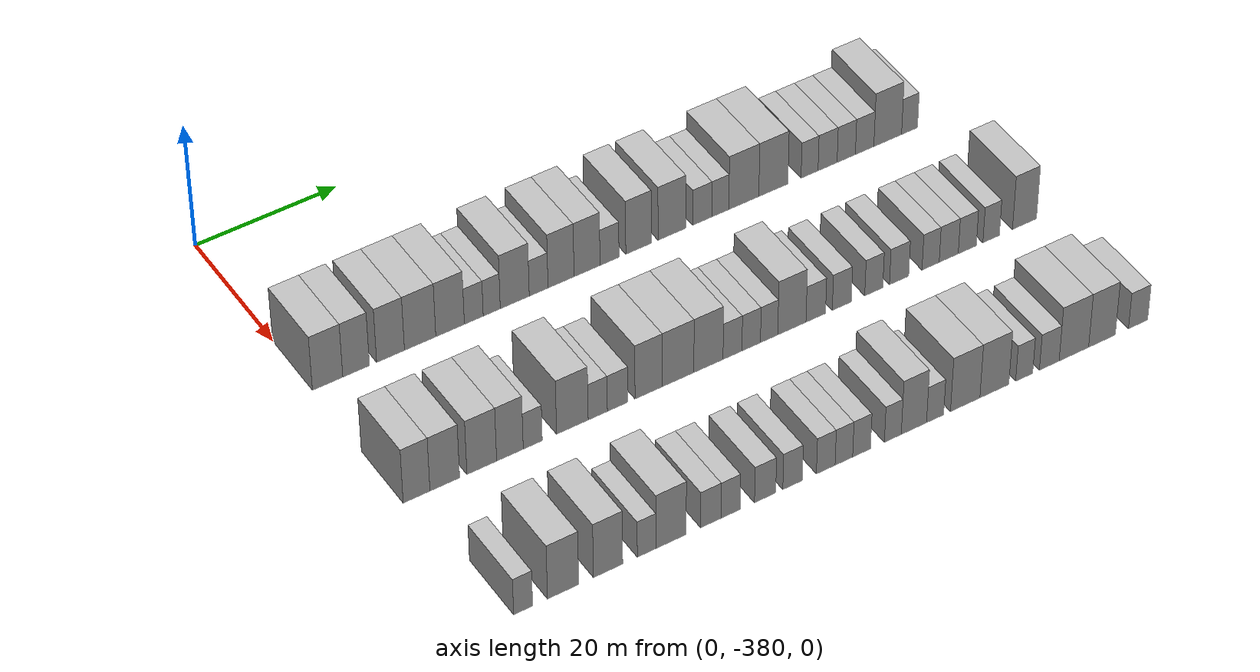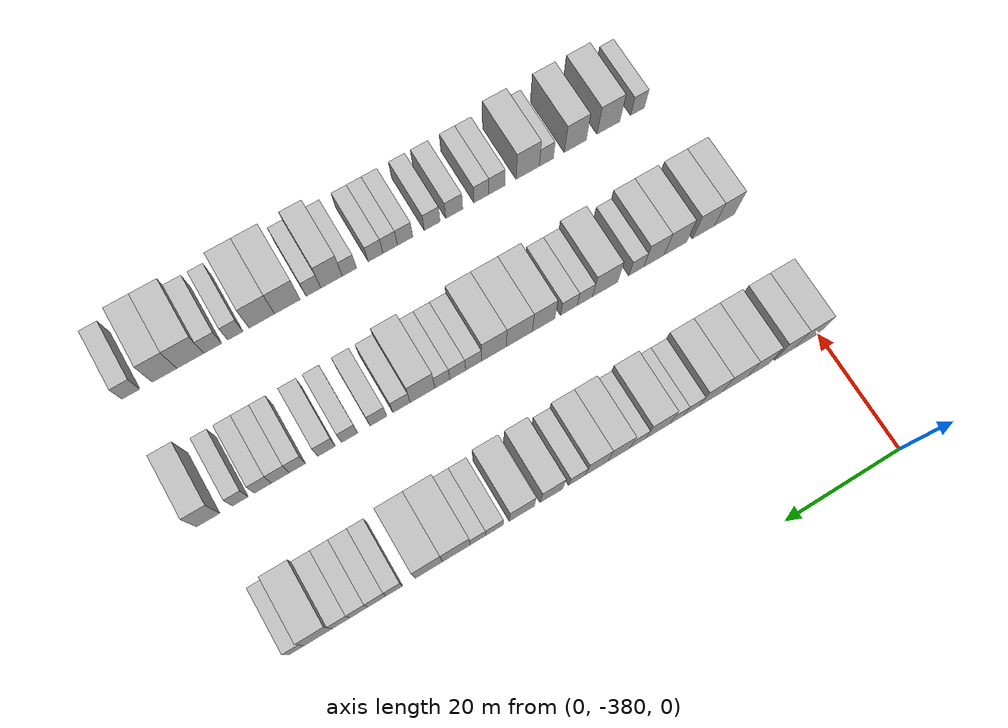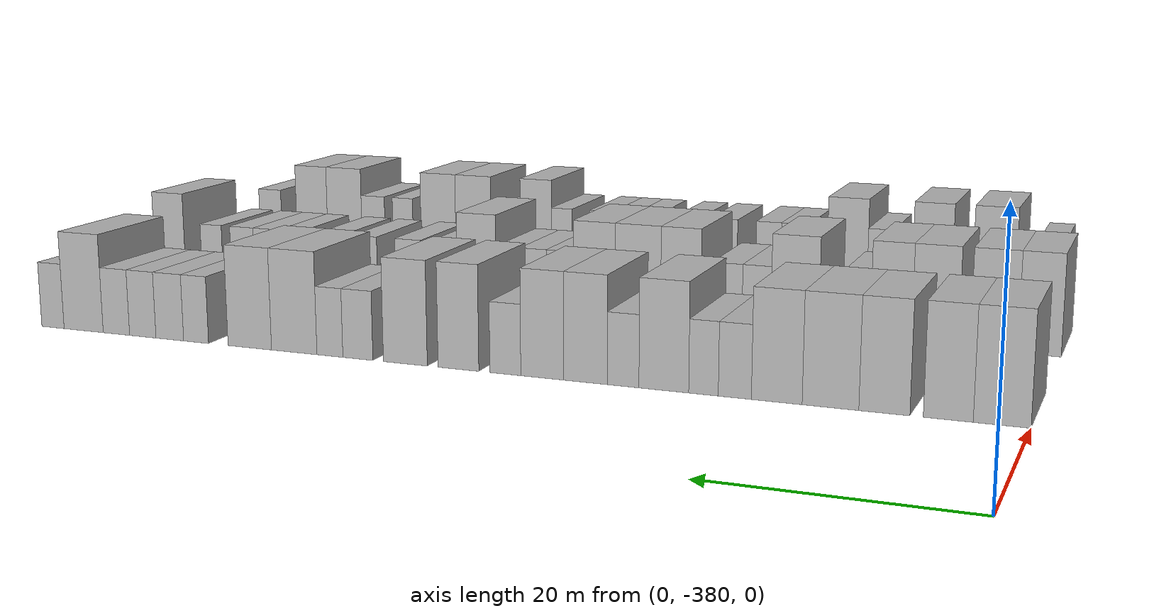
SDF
<sdf version="1.6">
 <world name="default">
  <model name="building_1">
   <static>1</static>
   <pose>25.0000 -377.9014 0 0.000000 0.000000 0.000000</pose>
   <link name="link">
    <pose>0 0 4.50 0 0 0</pose>
    <collision name="collision"><geometry><box><size>10.0000 4.1972 9.0000</size></box></geometry></collision>
    <visual name="visual">
     <cast_shadows>0</cast_shadows>
     <geometry><box><size>10.0000 4.1972 9.0000</size></box></geometry>
     <material>
      <script>
       <uri>model://HANNAS_wall/materials/scripts</uri>
       <uri>model://HANNAS_wall/materials/textures</uri>
       <name>vrc/HANNAS_wall</name>
      </script>
     </material>
    </visual>
   </link>
  </model>
  <model name="building_2">
   <static>1</static>
   <pose>25.0000 -373.9525 0 0.000000 0.000000 0.000000</pose>
   <link name="link">
    <pose>0 0 4.50 0 0 0</pose>
    <collision name="collision"><geometry><box><size>10.0000 3.7007 9.0000</size></box></geometry></collision>
    <visual name="visual">
     <cast_shadows>0</cast_shadows>
     <geometry><box><size>10.0000 3.7007 9.0000</size></box></geometry>
     <material>
      <script>
       <uri>model://HANNAS_wall/materials/scripts</uri>
       <uri>model://HANNAS_wall/materials/textures</uri>
       <name>vrc/HANNAS_wall</name>
      </script>
     </material>
    </visual>
   </link>
  </model>
  <model name="building_3">
   <static>1</static>
   <pose>25.0000 -369.1578 0 0.000000 0.000000 0.000000</pose>
   <link name="link">
    <pose>0 0 4.50 0 0 0</pose>
    <collision name="collision"><geometry><box><size>10.0000 3.8887 9.0000</size></box></geometry></collision>
    <visual name="visual">
     <cast_shadows>0</cast_shadows>
     <geometry><box><size>10.0000 3.8887 9.0000</size></box></geometry>
     <material>
      <script>
       <uri>model://HANNAS_wall/materials/scripts</uri>
       <uri>model://HANNAS_wall/materials/textures</uri>
       <name>vrc/HANNAS_wall</name>
      </script>
     </material>
    </visual>
   </link>
  </model>
  <model name="building_4">
   <static>1</static>
   <pose>25.0000 -365.0094 0 0.000000 0.000000 0.000000</pose>
   <link name="link">
    <pose>0 0 4.50 0 0 0</pose>
    <collision name="collision"><geometry><box><size>10.0000 4.4080 9.0000</size></box></geometry></collision>
    <visual name="visual">
     <cast_shadows>0</cast_shadows>
     <geometry><box><size>10.0000 4.4080 9.0000</size></box></geometry>
     <material>
      <script>
       <uri>model://HANNAS_wall/materials/scripts</uri>
       <uri>model://HANNAS_wall/materials/textures</uri>
       <name>vrc/HANNAS_wall</name>
      </script>
     </material>
    </visual>
   </link>
  </model>
  <model name="building_5">
   <static>1</static>
   <pose>25.0000 -360.7854 0 0.000000 0.000000 0.000000</pose>
   <link name="link">
    <pose>0 0 4.50 0 0 0</pose>
    <collision name="collision"><geometry><box><size>10.0000 4.0401 9.0000</size></box></geometry></collision>
    <visual name="visual">
     <cast_shadows>0</cast_shadows>
     <geometry><box><size>10.0000 4.0401 9.0000</size></box></geometry>
     <material>
      <script>
       <uri>model://HANNAS_wall/materials/scripts</uri>
       <uri>model://HANNAS_wall/materials/textures</uri>
       <name>vrc/HANNAS_wall</name>
      </script>
     </material>
    </visual>
   </link>
  </model>
  <model name="building_6">
   <static>1</static>
   <pose>25.0000 -357.4255 0 0.000000 0.000000 0.000000</pose>
   <link name="link">
    <pose>0 0 3.00 0 0 0</pose>
    <collision name="collision"><geometry><box><size>10.0000 2.6798 6.0000</size></box></geometry></collision>
    <visual name="visual">
     <cast_shadows>0</cast_shadows>
     <geometry><box><size>10.0000 2.6798 6.0000</size></box></geometry>
     <material>
      <script>
       <uri>model://HANNAS_wall/materials/scripts</uri>
       <uri>model://HANNAS_wall/materials/textures</uri>
       <name>vrc/HANNAS_wall</name>
      </script>
     </material>
    </visual>
   </link>
  </model>
  <model name="building_7">
   <static>1</static>
   <pose>25.0000 -354.8704 0 0.000000 0.000000 0.000000</pose>
   <link name="link">
    <pose>0 0 3.00 0 0 0</pose>
    <collision name="collision"><geometry><box><size>10.0000 2.4304 6.0000</size></box></geometry></collision>
    <visual name="visual">
     <cast_shadows>0</cast_shadows>
     <geometry><box><size>10.0000 2.4304 6.0000</size></box></geometry>
     <material>
      <script>
       <uri>model://HANNAS_wall/materials/scripts</uri>
       <uri>model://HANNAS_wall/materials/textures</uri>
       <name>vrc/HANNAS_wall</name>
      </script>
     </material>
    </visual>
   </link>
  </model>
  <model name="building_8">
   <static>1</static>
   <pose>25.0000 -351.5773 0 0.000000 0.000000 0.000000</pose>
   <link name="link">
    <pose>0 0 4.50 0 0 0</pose>
    <collision name="collision"><geometry><box><size>10.0000 4.1559 9.0000</size></box></geometry></collision>
    <visual name="visual">
     <cast_shadows>0</cast_shadows>
     <geometry><box><size>10.0000 4.1559 9.0000</size></box></geometry>
     <material>
      <script>
       <uri>model://HANNAS_wall/materials/scripts</uri>
       <uri>model://HANNAS_wall/materials/textures</uri>
       <name>vrc/HANNAS_wall</name>
      </script>
     </material>
    </visual>
   </link>
  </model>
  <model name="building_9">
   <static>1</static>
   <pose>25.0000 -348.1490 0 0.000000 0.000000 0.000000</pose>
   <link name="link">
    <pose>0 0 3.00 0 0 0</pose>
    <collision name="collision"><geometry><box><size>10.0000 2.7007 6.0000</size></box></geometry></collision>
    <visual name="visual">
     <cast_shadows>0</cast_shadows>
     <geometry><box><size>10.0000 2.7007 6.0000</size></box></geometry>
     <material>
      <script>
       <uri>model://HANNAS_wall/materials/scripts</uri>
       <uri>model://HANNAS_wall/materials/textures</uri>
       <name>vrc/HANNAS_wall</name>
      </script>
     </material>
    </visual>
   </link>
  </model>
  <model name="building_10">
   <static>1</static>
   <pose>25.0000 -344.9133 0 0.000000 0.000000 0.000000</pose>
   <link name="link">
    <pose>0 0 4.50 0 0 0</pose>
    <collision name="collision"><geometry><box><size>10.0000 3.7708 9.0000</size></box></geometry></collision>
    <visual name="visual">
     <cast_shadows>0</cast_shadows>
     <geometry><box><size>10.0000 3.7708 9.0000</size></box></geometry>
     <material>
      <script>
       <uri>model://HANNAS_wall/materials/scripts</uri>
       <uri>model://HANNAS_wall/materials/textures</uri>
       <name>vrc/HANNAS_wall</name>
      </script>
     </material>
    </visual>
   </link>
  </model>
  <model name="building_11">
   <static>1</static>
   <pose>25.0000 -341.1425 0 0.000000 0.000000 0.000000</pose>
   <link name="link">
    <pose>0 0 4.50 0 0 0</pose>
    <collision name="collision"><geometry><box><size>10.0000 3.7708 9.0000</size></box></geometry></collision>
    <visual name="visual">
     <cast_shadows>0</cast_shadows>
     <geometry><box><size>10.0000 3.7708 9.0000</size></box></geometry>
     <material>
      <script>
       <uri>model://HANNAS_wall/materials/scripts</uri>
       <uri>model://HANNAS_wall/materials/textures</uri>
       <name>vrc/HANNAS_wall</name>
      </script>
     </material>
    </visual>
   </link>
  </model>
  <model name="building_12">
   <static>1</static>
   <pose>25.0000 -337.8733 0 0.000000 0.000000 0.000000</pose>
   <link name="link">
    <pose>0 0 3.00 0 0 0</pose>
    <collision name="collision"><geometry><box><size>10.0000 2.7677 6.0000</size></box></geometry></collision>
    <visual name="visual">
     <cast_shadows>0</cast_shadows>
     <geometry><box><size>10.0000 2.7677 6.0000</size></box></geometry>
     <material>
      <script>
       <uri>model://HANNAS_wall/materials/scripts</uri>
       <uri>model://HANNAS_wall/materials/textures</uri>
       <name>vrc/HANNAS_wall</name>
      </script>
     </material>
    </visual>
   </link>
  </model>
  <model name="building_13">
   <static>1</static>
   <pose>25.0000 -333.6231 0 0.000000 0.000000 0.000000</pose>
   <link name="link">
    <pose>0 0 4.50 0 0 0</pose>
    <collision name="collision"><geometry><box><size>10.0000 3.7328 9.0000</size></box></geometry></collision>
    <visual name="visual">
     <cast_shadows>0</cast_shadows>
     <geometry><box><size>10.0000 3.7328 9.0000</size></box></geometry>
     <material>
      <script>
       <uri>model://HANNAS_wall/materials/scripts</uri>
       <uri>model://HANNAS_wall/materials/textures</uri>
       <name>vrc/HANNAS_wall</name>
      </script>
     </material>
    </visual>
   </link>
  </model>
  <model name="building_14">
   <static>1</static>
   <pose>25.0000 -328.6985 0 0.000000 0.000000 0.000000</pose>
   <link name="link">
    <pose>0 0 4.50 0 0 0</pose>
    <collision name="collision"><geometry><box><size>10.0000 4.1164 9.0000</size></box></geometry></collision>
    <visual name="visual">
     <cast_shadows>0</cast_shadows>
     <geometry><box><size>10.0000 4.1164 9.0000</size></box></geometry>
     <material>
      <script>
       <uri>model://HANNAS_wall/materials/scripts</uri>
       <uri>model://HANNAS_wall/materials/textures</uri>
       <name>vrc/HANNAS_wall</name>
      </script>
     </material>
    </visual>
   </link>
  </model>
  <model name="building_15">
   <static>1</static>
   <pose>25.0000 -324.2007 0 0.000000 0.000000 0.000000</pose>
   <link name="link">
    <pose>0 0 3.00 0 0 0</pose>
    <collision name="collision"><geometry><box><size>10.0000 2.8793 6.0000</size></box></geometry></collision>
    <visual name="visual">
     <cast_shadows>0</cast_shadows>
     <geometry><box><size>10.0000 2.8793 6.0000</size></box></geometry>
     <material>
      <script>
       <uri>model://HANNAS_wall/materials/scripts</uri>
       <uri>model://HANNAS_wall/materials/textures</uri>
       <name>vrc/HANNAS_wall</name>
      </script>
     </material>
    </visual>
   </link>
  </model>
  <model name="building_16">
   <static>1</static>
   <pose>25.0000 -321.5026 0 0.000000 0.000000 0.000000</pose>
   <link name="link">
    <pose>0 0 3.00 0 0 0</pose>
    <collision name="collision"><geometry><box><size>10.0000 2.5169 6.0000</size></box></geometry></collision>
    <visual name="visual">
     <cast_shadows>0</cast_shadows>
     <geometry><box><size>10.0000 2.5169 6.0000</size></box></geometry>
     <material>
      <script>
       <uri>model://HANNAS_wall/materials/scripts</uri>
       <uri>model://HANNAS_wall/materials/textures</uri>
       <name>vrc/HANNAS_wall</name>
      </script>
     </material>
    </visual>
   </link>
  </model>
  <model name="building_17">
   <static>1</static>
   <pose>25.0000 -317.9972 0 0.000000 0.000000 0.000000</pose>
   <link name="link">
    <pose>0 0 4.50 0 0 0</pose>
    <collision name="collision"><geometry><box><size>10.0000 4.4939 9.0000</size></box></geometry></collision>
    <visual name="visual">
     <cast_shadows>0</cast_shadows>
     <geometry><box><size>10.0000 4.4939 9.0000</size></box></geometry>
     <material>
      <script>
       <uri>model://HANNAS_wall/materials/scripts</uri>
       <uri>model://HANNAS_wall/materials/textures</uri>
       <name>vrc/HANNAS_wall</name>
      </script>
     </material>
    </visual>
   </link>
  </model>
  <model name="building_18">
   <static>1</static>
   <pose>25.0000 -313.5573 0 0.000000 0.000000 0.000000</pose>
   <link name="link">
    <pose>0 0 4.50 0 0 0</pose>
    <collision name="collision"><geometry><box><size>10.0000 4.3858 9.0000</size></box></geometry></collision>
    <visual name="visual">
     <cast_shadows>0</cast_shadows>
     <geometry><box><size>10.0000 4.3858 9.0000</size></box></geometry>
     <material>
      <script>
       <uri>model://HANNAS_wall/materials/scripts</uri>
       <uri>model://HANNAS_wall/materials/textures</uri>
       <name>vrc/HANNAS_wall</name>
      </script>
     </material>
    </visual>
   </link>
  </model>
  <model name="building_19">
   <static>1</static>
   <pose>25.0000 -308.0744 0 0.000000 0.000000 0.000000</pose>
   <link name="link">
    <pose>0 0 3.00 0 0 0</pose>
    <collision name="collision"><geometry><box><size>10.0000 2.5801 6.0000</size></box></geometry></collision>
    <visual name="visual">
     <cast_shadows>0</cast_shadows>
     <geometry><box><size>10.0000 2.5801 6.0000</size></box></geometry>
     <material>
      <script>
       <uri>model://HANNAS_wall/materials/scripts</uri>
       <uri>model://HANNAS_wall/materials/textures</uri>
       <name>vrc/HANNAS_wall</name>
      </script>
     </material>
    </visual>
   </link>
  </model>
  <model name="building_20">
   <static>1</static>
   <pose>25.0000 -305.3306 0 0.000000 0.000000 0.000000</pose>
   <link name="link">
    <pose>0 0 3.00 0 0 0</pose>
    <collision name="collision"><geometry><box><size>10.0000 2.9074 6.0000</size></box></geometry></collision>
    <visual name="visual">
     <cast_shadows>0</cast_shadows>
     <geometry><box><size>10.0000 2.9074 6.0000</size></box></geometry>
     <material>
      <script>
       <uri>model://HANNAS_wall/materials/scripts</uri>
       <uri>model://HANNAS_wall/materials/textures</uri>
       <name>vrc/HANNAS_wall</name>
      </script>
     </material>
    </visual>
   </link>
  </model>
  <model name="building_21">
   <static>1</static>
   <pose>25.0000 -302.4756 0 0.000000 0.000000 0.000000</pose>
   <link name="link">
    <pose>0 0 3.00 0 0 0</pose>
    <collision name="collision"><geometry><box><size>10.0000 2.8027 6.0000</size></box></geometry></collision>
    <visual name="visual">
     <cast_shadows>0</cast_shadows>
     <geometry><box><size>10.0000 2.8027 6.0000</size></box></geometry>
     <material>
      <script>
       <uri>model://HANNAS_wall/materials/scripts</uri>
       <uri>model://HANNAS_wall/materials/textures</uri>
       <name>vrc/HANNAS_wall</name>
      </script>
     </material>
    </visual>
   </link>
  </model>
  <model name="building_22">
   <static>1</static>
   <pose>25.0000 -299.6530 0 0.000000 0.000000 0.000000</pose>
   <link name="link">
    <pose>0 0 3.00 0 0 0</pose>
    <collision name="collision"><geometry><box><size>10.0000 2.8426 6.0000</size></box></geometry></collision>
    <visual name="visual">
     <cast_shadows>0</cast_shadows>
     <geometry><box><size>10.0000 2.8426 6.0000</size></box></geometry>
     <material>
      <script>
       <uri>model://HANNAS_wall/materials/scripts</uri>
       <uri>model://HANNAS_wall/materials/textures</uri>
       <name>vrc/HANNAS_wall</name>
      </script>
     </material>
    </visual>
   </link>
  </model>
  <model name="building_23">
   <static>1</static>
   <pose>25.0000 -296.0908 0 0.000000 0.000000 0.000000</pose>
   <link name="link">
    <pose>0 0 4.50 0 0 0</pose>
    <collision name="collision"><geometry><box><size>10.0000 4.2818 9.0000</size></box></geometry></collision>
    <visual name="visual">
     <cast_shadows>0</cast_shadows>
     <geometry><box><size>10.0000 4.2818 9.0000</size></box></geometry>
     <material>
      <script>
       <uri>model://HANNAS_wall/materials/scripts</uri>
       <uri>model://HANNAS_wall/materials/textures</uri>
       <name>vrc/HANNAS_wall</name>
      </script>
     </material>
    </visual>
   </link>
  </model>
  <model name="building_24">
   <static>1</static>
   <pose>25.0000 -292.7129 0 0.000000 0.000000 0.000000</pose>
   <link name="link">
    <pose>0 0 3.00 0 0 0</pose>
    <collision name="collision"><geometry><box><size>10.0000 2.4739 6.0000</size></box></geometry></collision>
    <visual name="visual">
     <cast_shadows>0</cast_shadows>
     <geometry><box><size>10.0000 2.4739 6.0000</size></box></geometry>
     <material>
      <script>
       <uri>model://HANNAS_wall/materials/scripts</uri>
       <uri>model://HANNAS_wall/materials/textures</uri>
       <name>vrc/HANNAS_wall</name>
      </script>
     </material>
    </visual>
   </link>
  </model>
  <model name="building_191">
   <static>1</static>
   <pose>47.0000 -378.1825 0 0.000000 0.000000 0.000000</pose>
   <link name="link">
    <pose>0 0 4.50 0 0 0</pose>
    <collision name="collision"><geometry><box><size>10.0000 3.6349 9.0000</size></box></geometry></collision>
    <visual name="visual">
     <cast_shadows>0</cast_shadows>
     <geometry><box><size>10.0000 3.6349 9.0000</size></box></geometry>
     <material>
      <script>
       <uri>model://HANNAS_wall/materials/scripts</uri>
       <uri>model://HANNAS_wall/materials/textures</uri>
       <name>vrc/HANNAS_wall</name>
      </script>
     </material>
    </visual>
   </link>
  </model>
  <model name="building_192">
   <static>1</static>
   <pose>47.0000 -374.3386 0 0.000000 0.000000 0.000000</pose>
   <link name="link">
    <pose>0 0 4.50 0 0 0</pose>
    <collision name="collision"><geometry><box><size>10.0000 4.0531 9.0000</size></box></geometry></collision>
    <visual name="visual">
     <cast_shadows>0</cast_shadows>
     <geometry><box><size>10.0000 4.0531 9.0000</size></box></geometry>
     <material>
      <script>
       <uri>model://HANNAS_wall/materials/scripts</uri>
       <uri>model://HANNAS_wall/materials/textures</uri>
       <name>vrc/HANNAS_wall</name>
      </script>
     </material>
    </visual>
   </link>
  </model>
  <model name="building_193">
   <static>1</static>
   <pose>47.0000 -369.2678 0 0.000000 0.000000 0.000000</pose>
   <link name="link">
    <pose>0 0 4.50 0 0 0</pose>
    <collision name="collision"><geometry><box><size>10.0000 4.0885 9.0000</size></box></geometry></collision>
    <visual name="visual">
     <cast_shadows>0</cast_shadows>
     <geometry><box><size>10.0000 4.0885 9.0000</size></box></geometry>
     <material>
      <script>
       <uri>model://HANNAS_wall/materials/scripts</uri>
       <uri>model://HANNAS_wall/materials/textures</uri>
       <name>vrc/HANNAS_wall</name>
      </script>
     </material>
    </visual>
   </link>
  </model>
  <model name="building_194">
   <static>1</static>
   <pose>47.0000 -365.3799 0 0.000000 0.000000 0.000000</pose>
   <link name="link">
    <pose>0 0 4.50 0 0 0</pose>
    <collision name="collision"><geometry><box><size>10.0000 3.6872 9.0000</size></box></geometry></collision>
    <visual name="visual">
     <cast_shadows>0</cast_shadows>
     <geometry><box><size>10.0000 3.6872 9.0000</size></box></geometry>
     <material>
      <script>
       <uri>model://HANNAS_wall/materials/scripts</uri>
       <uri>model://HANNAS_wall/materials/textures</uri>
       <name>vrc/HANNAS_wall</name>
      </script>
     </material>
    </visual>
   </link>
  </model>
  <model name="building_195">
   <static>1</static>
   <pose>47.0000 -362.2163 0 0.000000 0.000000 0.000000</pose>
   <link name="link">
    <pose>0 0 3.00 0 0 0</pose>
    <collision name="collision"><geometry><box><size>10.0000 2.6401 6.0000</size></box></geometry></collision>
    <visual name="visual">
     <cast_shadows>0</cast_shadows>
     <geometry><box><size>10.0000 2.6401 6.0000</size></box></geometry>
     <material>
      <script>
       <uri>model://HANNAS_wall/materials/scripts</uri>
       <uri>model://HANNAS_wall/materials/textures</uri>
       <name>vrc/HANNAS_wall</name>
      </script>
     </material>
    </visual>
   </link>
  </model>
  <model name="building_196">
   <static>1</static>
   <pose>47.0000 -356.6813 0 0.000000 0.000000 0.000000</pose>
   <link name="link">
    <pose>0 0 4.50 0 0 0</pose>
    <collision name="collision"><geometry><box><size>10.0000 4.4299 9.0000</size></box></geometry></collision>
    <visual name="visual">
     <cast_shadows>0</cast_shadows>
     <geometry><box><size>10.0000 4.4299 9.0000</size></box></geometry>
     <material>
      <script>
       <uri>model://HANNAS_wall/materials/scripts</uri>
       <uri>model://HANNAS_wall/materials/textures</uri>
       <name>vrc/HANNAS_wall</name>
      </script>
     </material>
    </visual>
   </link>
  </model>
  <model name="building_197">
   <static>1</static>
   <pose>47.0000 -353.1163 0 0.000000 0.000000 0.000000</pose>
   <link name="link">
    <pose>0 0 3.00 0 0 0</pose>
    <collision name="collision"><geometry><box><size>10.0000 2.7001 6.0000</size></box></geometry></collision>
    <visual name="visual">
     <cast_shadows>0</cast_shadows>
     <geometry><box><size>10.0000 2.7001 6.0000</size></box></geometry>
     <material>
      <script>
       <uri>model://HANNAS_wall/materials/scripts</uri>
       <uri>model://HANNAS_wall/materials/textures</uri>
       <name>vrc/HANNAS_wall</name>
      </script>
     </material>
    </visual>
   </link>
  </model>
  <model name="building_198">
   <static>1</static>
   <pose>47.0000 -350.3089 0 0.000000 0.000000 0.000000</pose>
   <link name="link">
    <pose>0 0 3.00 0 0 0</pose>
    <collision name="collision"><geometry><box><size>10.0000 2.9145 6.0000</size></box></geometry></collision>
    <visual name="visual">
     <cast_shadows>0</cast_shadows>
     <geometry><box><size>10.0000 2.9145 6.0000</size></box></geometry>
     <material>
      <script>
       <uri>model://HANNAS_wall/materials/scripts</uri>
       <uri>model://HANNAS_wall/materials/textures</uri>
       <name>vrc/HANNAS_wall</name>
      </script>
     </material>
    </visual>
   </link>
  </model>
  <model name="building_199">
   <static>1</static>
   <pose>47.0000 -345.9016 0 0.000000 0.000000 0.000000</pose>
   <link name="link">
    <pose>0 0 4.50 0 0 0</pose>
    <collision name="collision"><geometry><box><size>10.0000 3.9001 9.0000</size></box></geometry></collision>
    <visual name="visual">
     <cast_shadows>0</cast_shadows>
     <geometry><box><size>10.0000 3.9001 9.0000</size></box></geometry>
     <material>
      <script>
       <uri>model://HANNAS_wall/materials/scripts</uri>
       <uri>model://HANNAS_wall/materials/textures</uri>
       <name>vrc/HANNAS_wall</name>
      </script>
     </material>
    </visual>
   </link>
  </model>
  <model name="building_200">
   <static>1</static>
   <pose>47.0000 -341.7060 0 0.000000 0.000000 0.000000</pose>
   <link name="link">
    <pose>0 0 4.50 0 0 0</pose>
    <collision name="collision"><geometry><box><size>10.0000 4.4913 9.0000</size></box></geometry></collision>
    <visual name="visual">
     <cast_shadows>0</cast_shadows>
     <geometry><box><size>10.0000 4.4913 9.0000</size></box></geometry>
     <material>
      <script>
       <uri>model://HANNAS_wall/materials/scripts</uri>
       <uri>model://HANNAS_wall/materials/textures</uri>
       <name>vrc/HANNAS_wall</name>
      </script>
     </material>
    </visual>
   </link>
  </model>
  <model name="building_201">
   <static>1</static>
   <pose>47.0000 -337.3600 0 0.000000 0.000000 0.000000</pose>
   <link name="link">
    <pose>0 0 4.50 0 0 0</pose>
    <collision name="collision"><geometry><box><size>10.0000 4.2006 9.0000</size></box></geometry></collision>
    <visual name="visual">
     <cast_shadows>0</cast_shadows>
     <geometry><box><size>10.0000 4.2006 9.0000</size></box></geometry>
     <material>
      <script>
       <uri>model://HANNAS_wall/materials/scripts</uri>
       <uri>model://HANNAS_wall/materials/textures</uri>
       <name>vrc/HANNAS_wall</name>
      </script>
     </material>
    </visual>
   </link>
  </model>
  <model name="building_202">
   <static>1</static>
   <pose>47.0000 -333.8903 0 0.000000 0.000000 0.000000</pose>
   <link name="link">
    <pose>0 0 3.00 0 0 0</pose>
    <collision name="collision"><geometry><box><size>10.0000 2.7387 6.0000</size></box></geometry></collision>
    <visual name="visual">
     <cast_shadows>0</cast_shadows>
     <geometry><box><size>10.0000 2.7387 6.0000</size></box></geometry>
     <material>
      <script>
       <uri>model://HANNAS_wall/materials/scripts</uri>
       <uri>model://HANNAS_wall/materials/textures</uri>
       <name>vrc/HANNAS_wall</name>
      </script>
     </material>
    </visual>
   </link>
  </model>
  <model name="building_203">
   <static>1</static>
   <pose>47.0000 -331.1768 0 0.000000 0.000000 0.000000</pose>
   <link name="link">
    <pose>0 0 3.00 0 0 0</pose>
    <collision name="collision"><geometry><box><size>10.0000 2.6884 6.0000</size></box></geometry></collision>
    <visual name="visual">
     <cast_shadows>0</cast_shadows>
     <geometry><box><size>10.0000 2.6884 6.0000</size></box></geometry>
     <material>
      <script>
       <uri>model://HANNAS_wall/materials/scripts</uri>
       <uri>model://HANNAS_wall/materials/textures</uri>
       <name>vrc/HANNAS_wall</name>
      </script>
     </material>
    </visual>
   </link>
  </model>
  <model name="building_204">
   <static>1</static>
   <pose>47.0000 -328.5744 0 0.000000 0.000000 0.000000</pose>
   <link name="link">
    <pose>0 0 3.00 0 0 0</pose>
    <collision name="collision"><geometry><box><size>10.0000 2.5163 6.0000</size></box></geometry></collision>
    <visual name="visual">
     <cast_shadows>0</cast_shadows>
     <geometry><box><size>10.0000 2.5163 6.0000</size></box></geometry>
     <material>
      <script>
       <uri>model://HANNAS_wall/materials/scripts</uri>
       <uri>model://HANNAS_wall/materials/textures</uri>
       <name>vrc/HANNAS_wall</name>
      </script>
     </material>
    </visual>
   </link>
  </model>
  <model name="building_205">
   <static>1</static>
   <pose>47.0000 -325.2484 0 0.000000 0.000000 0.000000</pose>
   <link name="link">
    <pose>0 0 4.50 0 0 0</pose>
    <collision name="collision"><geometry><box><size>10.0000 4.1357 9.0000</size></box></geometry></collision>
    <visual name="visual">
     <cast_shadows>0</cast_shadows>
     <geometry><box><size>10.0000 4.1357 9.0000</size></box></geometry>
     <material>
      <script>
       <uri>model://HANNAS_wall/materials/scripts</uri>
       <uri>model://HANNAS_wall/materials/textures</uri>
       <name>vrc/HANNAS_wall</name>
      </script>
     </material>
    </visual>
   </link>
  </model>
  <model name="building_206">
   <static>1</static>
   <pose>47.0000 -321.7413 0 0.000000 0.000000 0.000000</pose>
   <link name="link">
    <pose>0 0 3.00 0 0 0</pose>
    <collision name="collision"><geometry><box><size>10.0000 2.8787 6.0000</size></box></geometry></collision>
    <visual name="visual">
     <cast_shadows>0</cast_shadows>
     <geometry><box><size>10.0000 2.8787 6.0000</size></box></geometry>
     <material>
      <script>
       <uri>model://HANNAS_wall/materials/scripts</uri>
       <uri>model://HANNAS_wall/materials/textures</uri>
       <name>vrc/HANNAS_wall</name>
      </script>
     </material>
    </visual>
   </link>
  </model>
  <model name="building_207">
   <static>1</static>
   <pose>47.0000 -317.8992 0 0.000000 0.000000 0.000000</pose>
   <link name="link">
    <pose>0 0 3.00 0 0 0</pose>
    <collision name="collision"><geometry><box><size>10.0000 2.8054 6.0000</size></box></geometry></collision>
    <visual name="visual">
     <cast_shadows>0</cast_shadows>
     <geometry><box><size>10.0000 2.8054 6.0000</size></box></geometry>
     <material>
      <script>
       <uri>model://HANNAS_wall/materials/scripts</uri>
       <uri>model://HANNAS_wall/materials/textures</uri>
       <name>vrc/HANNAS_wall</name>
      </script>
     </material>
    </visual>
   </link>
  </model>
  <model name="building_208">
   <static>1</static>
   <pose>47.0000 -313.1531 0 0.000000 0.000000 0.000000</pose>
   <link name="link">
    <pose>0 0 3.00 0 0 0</pose>
    <collision name="collision"><geometry><box><size>10.0000 2.6868 6.0000</size></box></geometry></collision>
    <visual name="visual">
     <cast_shadows>0</cast_shadows>
     <geometry><box><size>10.0000 2.6868 6.0000</size></box></geometry>
     <material>
      <script>
       <uri>model://HANNAS_wall/materials/scripts</uri>
       <uri>model://HANNAS_wall/materials/textures</uri>
       <name>vrc/HANNAS_wall</name>
      </script>
     </material>
    </visual>
   </link>
  </model>
  <model name="building_209">
   <static>1</static>
   <pose>47.0000 -309.3720 0 0.000000 0.000000 0.000000</pose>
   <link name="link">
    <pose>0 0 3.00 0 0 0</pose>
    <collision name="collision"><geometry><box><size>10.0000 2.8755 6.0000</size></box></geometry></collision>
    <visual name="visual">
     <cast_shadows>0</cast_shadows>
     <geometry><box><size>10.0000 2.8755 6.0000</size></box></geometry>
     <material>
      <script>
       <uri>model://HANNAS_wall/materials/scripts</uri>
       <uri>model://HANNAS_wall/materials/textures</uri>
       <name>vrc/HANNAS_wall</name>
      </script>
     </material>
    </visual>
   </link>
  </model>
  <model name="building_210">
   <static>1</static>
   <pose>47.0000 -304.6387 0 0.000000 0.000000 0.000000</pose>
   <link name="link">
    <pose>0 0 3.00 0 0 0</pose>
    <collision name="collision"><geometry><box><size>10.0000 2.5910 6.0000</size></box></geometry></collision>
    <visual name="visual">
     <cast_shadows>0</cast_shadows>
     <geometry><box><size>10.0000 2.5910 6.0000</size></box></geometry>
     <material>
      <script>
       <uri>model://HANNAS_wall/materials/scripts</uri>
       <uri>model://HANNAS_wall/materials/textures</uri>
       <name>vrc/HANNAS_wall</name>
      </script>
     </material>
    </visual>
   </link>
  </model>
  <model name="building_211">
   <static>1</static>
   <pose>47.0000 -301.9009 0 0.000000 0.000000 0.000000</pose>
   <link name="link">
    <pose>0 0 3.00 0 0 0</pose>
    <collision name="collision"><geometry><box><size>10.0000 2.8846 6.0000</size></box></geometry></collision>
    <visual name="visual">
     <cast_shadows>0</cast_shadows>
     <geometry><box><size>10.0000 2.8846 6.0000</size></box></geometry>
     <material>
      <script>
       <uri>model://HANNAS_wall/materials/scripts</uri>
       <uri>model://HANNAS_wall/materials/textures</uri>
       <name>vrc/HANNAS_wall</name>
      </script>
     </material>
    </visual>
   </link>
  </model>
  <model name="building_212">
   <static>1</static>
   <pose>47.0000 -299.0855 0 0.000000 0.000000 0.000000</pose>
   <link name="link">
    <pose>0 0 3.00 0 0 0</pose>
    <collision name="collision"><geometry><box><size>10.0000 2.7462 6.0000</size></box></geometry></collision>
    <visual name="visual">
     <cast_shadows>0</cast_shadows>
     <geometry><box><size>10.0000 2.7462 6.0000</size></box></geometry>
     <material>
      <script>
       <uri>model://HANNAS_wall/materials/scripts</uri>
       <uri>model://HANNAS_wall/materials/textures</uri>
       <name>vrc/HANNAS_wall</name>
      </script>
     </material>
    </visual>
   </link>
  </model>
  <model name="building_213">
   <static>1</static>
   <pose>47.0000 -295.4514 0 0.000000 0.000000 0.000000</pose>
   <link name="link">
    <pose>0 0 3.00 0 0 0</pose>
    <collision name="collision"><geometry><box><size>10.0000 2.5219 6.0000</size></box></geometry></collision>
    <visual name="visual">
     <cast_shadows>0</cast_shadows>
     <geometry><box><size>10.0000 2.5219 6.0000</size></box></geometry>
     <material>
      <script>
       <uri>model://HANNAS_wall/materials/scripts</uri>
       <uri>model://HANNAS_wall/materials/textures</uri>
       <name>vrc/HANNAS_wall</name>
      </script>
     </material>
    </visual>
   </link>
  </model>
  <model name="building_214">
   <static>1</static>
   <pose>47.0000 -290.3478 0 0.000000 0.000000 0.000000</pose>
   <link name="link">
    <pose>0 0 4.50 0 0 0</pose>
    <collision name="collision"><geometry><box><size>10.0000 3.6854 9.0000</size></box></geometry></collision>
    <visual name="visual">
     <cast_shadows>0</cast_shadows>
     <geometry><box><size>10.0000 3.6854 9.0000</size></box></geometry>
     <material>
      <script>
       <uri>model://HANNAS_wall/materials/scripts</uri>
       <uri>model://HANNAS_wall/materials/textures</uri>
       <name>vrc/HANNAS_wall</name>
      </script>
     </material>
    </visual>
   </link>
  </model>
  <model name="building_376">
   <static>1</static>
   <pose>69.0000 -376.7275 0 0.000000 0.000000 0.000000</pose>
   <link name="link">
    <pose>0 0 3.00 0 0 0</pose>
    <collision name="collision"><geometry><box><size>10.0000 2.5449 6.0000</size></box></geometry></collision>
    <visual name="visual">
     <cast_shadows>0</cast_shadows>
     <geometry><box><size>10.0000 2.5449 6.0000</size></box></geometry>
     <material>
      <script>
       <uri>model://HANNAS_wall/materials/scripts</uri>
       <uri>model://HANNAS_wall/materials/textures</uri>
       <name>vrc/HANNAS_wall</name>
      </script>
     </material>
    </visual>
   </link>
  </model>
  <model name="building_377">
   <static>1</static>
   <pose>69.0000 -371.3467 0 0.000000 0.000000 0.000000</pose>
   <link name="link">
    <pose>0 0 4.50 0 0 0</pose>
    <collision name="collision"><geometry><box><size>10.0000 4.2168 9.0000</size></box></geometry></collision>
    <visual name="visual">
     <cast_shadows>0</cast_shadows>
     <geometry><box><size>10.0000 4.2168 9.0000</size></box></geometry>
     <material>
      <script>
       <uri>model://HANNAS_wall/materials/scripts</uri>
       <uri>model://HANNAS_wall/materials/textures</uri>
       <name>vrc/HANNAS_wall</name>
      </script>
     </material>
    </visual>
   </link>
  </model>
  <model name="building_378">
   <static>1</static>
   <pose>69.0000 -365.2452 0 0.000000 0.000000 0.000000</pose>
   <link name="link">
    <pose>0 0 4.50 0 0 0</pose>
    <collision name="collision"><geometry><box><size>10.0000 3.9862 9.0000</size></box></geometry></collision>
    <visual name="visual">
     <cast_shadows>0</cast_shadows>
     <geometry><box><size>10.0000 3.9862 9.0000</size></box></geometry>
     <material>
      <script>
       <uri>model://HANNAS_wall/materials/scripts</uri>
       <uri>model://HANNAS_wall/materials/textures</uri>
       <name>vrc/HANNAS_wall</name>
      </script>
     </material>
    </visual>
   </link>
  </model>
  <model name="building_379">
   <static>1</static>
   <pose>69.0000 -359.9796 0 0.000000 0.000000 0.000000</pose>
   <link name="link">
    <pose>0 0 3.00 0 0 0</pose>
    <collision name="collision"><geometry><box><size>10.0000 2.5451 6.0000</size></box></geometry></collision>
    <visual name="visual">
     <cast_shadows>0</cast_shadows>
     <geometry><box><size>10.0000 2.5451 6.0000</size></box></geometry>
     <material>
      <script>
       <uri>model://HANNAS_wall/materials/scripts</uri>
       <uri>model://HANNAS_wall/materials/textures</uri>
       <name>vrc/HANNAS_wall</name>
      </script>
     </material>
    </visual>
   </link>
  </model>
  <model name="building_380">
   <static>1</static>
   <pose>69.0000 -356.6158 0 0.000000 0.000000 0.000000</pose>
   <link name="link">
    <pose>0 0 4.50 0 0 0</pose>
    <collision name="collision"><geometry><box><size>10.0000 4.1825 9.0000</size></box></geometry></collision>
    <visual name="visual">
     <cast_shadows>0</cast_shadows>
     <geometry><box><size>10.0000 4.1825 9.0000</size></box></geometry>
     <material>
      <script>
       <uri>model://HANNAS_wall/materials/scripts</uri>
       <uri>model://HANNAS_wall/materials/textures</uri>
       <name>vrc/HANNAS_wall</name>
      </script>
     </material>
    </visual>
   </link>
  </model>
  <model name="building_381">
   <static>1</static>
   <pose>69.0000 -351.1021 0 0.000000 0.000000 0.000000</pose>
   <link name="link">
    <pose>0 0 3.00 0 0 0</pose>
    <collision name="collision"><geometry><box><size>10.0000 2.8450 6.0000</size></box></geometry></collision>
    <visual name="visual">
     <cast_shadows>0</cast_shadows>
     <geometry><box><size>10.0000 2.8450 6.0000</size></box></geometry>
     <material>
      <script>
       <uri>model://HANNAS_wall/materials/scripts</uri>
       <uri>model://HANNAS_wall/materials/textures</uri>
       <name>vrc/HANNAS_wall</name>
      </script>
     </material>
    </visual>
   </link>
  </model>
  <model name="building_382">
   <static>1</static>
   <pose>69.0000 -348.3423 0 0.000000 0.000000 0.000000</pose>
   <link name="link">
    <pose>0 0 3.00 0 0 0</pose>
    <collision name="collision"><geometry><box><size>10.0000 2.6746 6.0000</size></box></geometry></collision>
    <visual name="visual">
     <cast_shadows>0</cast_shadows>
     <geometry><box><size>10.0000 2.6746 6.0000</size></box></geometry>
     <material>
      <script>
       <uri>model://HANNAS_wall/materials/scripts</uri>
       <uri>model://HANNAS_wall/materials/textures</uri>
       <name>vrc/HANNAS_wall</name>
      </script>
     </material>
    </visual>
   </link>
  </model>
  <model name="building_383">
   <static>1</static>
   <pose>69.0000 -343.5119 0 0.000000 0.000000 0.000000</pose>
   <link name="link">
    <pose>0 0 3.00 0 0 0</pose>
    <collision name="collision"><geometry><box><size>10.0000 2.9861 6.0000</size></box></geometry></collision>
    <visual name="visual">
     <cast_shadows>0</cast_shadows>
     <geometry><box><size>10.0000 2.9861 6.0000</size></box></geometry>
     <material>
      <script>
       <uri>model://HANNAS_wall/materials/scripts</uri>
       <uri>model://HANNAS_wall/materials/textures</uri>
       <name>vrc/HANNAS_wall</name>
      </script>
     </material>
    </visual>
   </link>
  </model>
  <model name="building_384">
   <static>1</static>
   <pose>69.0000 -339.6402 0 0.000000 0.000000 0.000000</pose>
   <link name="link">
    <pose>0 0 3.00 0 0 0</pose>
    <collision name="collision"><geometry><box><size>10.0000 2.7573 6.0000</size></box></geometry></collision>
    <visual name="visual">
     <cast_shadows>0</cast_shadows>
     <geometry><box><size>10.0000 2.7573 6.0000</size></box></geometry>
     <material>
      <script>
       <uri>model://HANNAS_wall/materials/scripts</uri>
       <uri>model://HANNAS_wall/materials/textures</uri>
       <name>vrc/HANNAS_wall</name>
      </script>
     </material>
    </visual>
   </link>
  </model>
  <model name="building_385">
   <static>1</static>
   <pose>69.0000 -334.9316 0 0.000000 0.000000 0.000000</pose>
   <link name="link">
    <pose>0 0 3.00 0 0 0</pose>
    <collision name="collision"><geometry><box><size>10.0000 2.6599 6.0000</size></box></geometry></collision>
    <visual name="visual">
     <cast_shadows>0</cast_shadows>
     <geometry><box><size>10.0000 2.6599 6.0000</size></box></geometry>
     <material>
      <script>
       <uri>model://HANNAS_wall/materials/scripts</uri>
       <uri>model://HANNAS_wall/materials/textures</uri>
       <name>vrc/HANNAS_wall</name>
      </script>
     </material>
    </visual>
   </link>
  </model>
  <model name="building_386">
   <static>1</static>
   <pose>69.0000 -332.3457 0 0.000000 0.000000 0.000000</pose>
   <link name="link">
    <pose>0 0 3.00 0 0 0</pose>
    <collision name="collision"><geometry><box><size>10.0000 2.5119 6.0000</size></box></geometry></collision>
    <visual name="visual">
     <cast_shadows>0</cast_shadows>
     <geometry><box><size>10.0000 2.5119 6.0000</size></box></geometry>
     <material>
      <script>
       <uri>model://HANNAS_wall/materials/scripts</uri>
       <uri>model://HANNAS_wall/materials/textures</uri>
       <name>vrc/HANNAS_wall</name>
      </script>
     </material>
    </visual>
   </link>
  </model>
  <model name="building_387">
   <static>1</static>
   <pose>69.0000 -329.8104 0 0.000000 0.000000 0.000000</pose>
   <link name="link">
    <pose>0 0 3.00 0 0 0</pose>
    <collision name="collision"><geometry><box><size>10.0000 2.5586 6.0000</size></box></geometry></collision>
    <visual name="visual">
     <cast_shadows>0</cast_shadows>
     <geometry><box><size>10.0000 2.5586 6.0000</size></box></geometry>
     <material>
      <script>
       <uri>model://HANNAS_wall/materials/scripts</uri>
       <uri>model://HANNAS_wall/materials/textures</uri>
       <name>vrc/HANNAS_wall</name>
      </script>
     </material>
    </visual>
   </link>
  </model>
  <model name="building_388">
   <static>1</static>
   <pose>69.0000 -325.3115 0 0.000000 0.000000 0.000000</pose>
   <link name="link">
    <pose>0 0 3.00 0 0 0</pose>
    <collision name="collision"><geometry><box><size>10.0000 2.4393 6.0000</size></box></geometry></collision>
    <visual name="visual">
     <cast_shadows>0</cast_shadows>
     <geometry><box><size>10.0000 2.4393 6.0000</size></box></geometry>
     <material>
      <script>
       <uri>model://HANNAS_wall/materials/scripts</uri>
       <uri>model://HANNAS_wall/materials/textures</uri>
       <name>vrc/HANNAS_wall</name>
      </script>
     </material>
    </visual>
   </link>
  </model>
  <model name="building_389">
   <static>1</static>
   <pose>69.0000 -322.2598 0 0.000000 0.000000 0.000000</pose>
   <link name="link">
    <pose>0 0 4.50 0 0 0</pose>
    <collision name="collision"><geometry><box><size>10.0000 3.6642 9.0000</size></box></geometry></collision>
    <visual name="visual">
     <cast_shadows>0</cast_shadows>
     <geometry><box><size>10.0000 3.6642 9.0000</size></box></geometry>
     <material>
      <script>
       <uri>model://HANNAS_wall/materials/scripts</uri>
       <uri>model://HANNAS_wall/materials/textures</uri>
       <name>vrc/HANNAS_wall</name>
      </script>
     </material>
    </visual>
   </link>
  </model>
  <model name="building_390">
   <static>1</static>
   <pose>69.0000 -319.1810 0 0.000000 0.000000 0.000000</pose>
   <link name="link">
    <pose>0 0 3.00 0 0 0</pose>
    <collision name="collision"><geometry><box><size>10.0000 2.4932 6.0000</size></box></geometry></collision>
    <visual name="visual">
     <cast_shadows>0</cast_shadows>
     <geometry><box><size>10.0000 2.4932 6.0000</size></box></geometry>
     <material>
      <script>
       <uri>model://HANNAS_wall/materials/scripts</uri>
       <uri>model://HANNAS_wall/materials/textures</uri>
       <name>vrc/HANNAS_wall</name>
      </script>
     </material>
    </visual>
   </link>
  </model>
  <model name="building_391">
   <static>1</static>
   <pose>69.0000 -314.7797 0 0.000000 0.000000 0.000000</pose>
   <link name="link">
    <pose>0 0 4.50 0 0 0</pose>
    <collision name="collision"><geometry><box><size>10.0000 4.3094 9.0000</size></box></geometry></collision>
    <visual name="visual">
     <cast_shadows>0</cast_shadows>
     <geometry><box><size>10.0000 4.3094 9.0000</size></box></geometry>
     <material>
      <script>
       <uri>model://HANNAS_wall/materials/scripts</uri>
       <uri>model://HANNAS_wall/materials/textures</uri>
       <name>vrc/HANNAS_wall</name>
      </script>
     </material>
    </visual>
   </link>
  </model>
  <model name="building_392">
   <static>1</static>
   <pose>69.0000 -310.4899 0 0.000000 0.000000 0.000000</pose>
   <link name="link">
    <pose>0 0 4.50 0 0 0</pose>
    <collision name="collision"><geometry><box><size>10.0000 4.2702 9.0000</size></box></geometry></collision>
    <visual name="visual">
     <cast_shadows>0</cast_shadows>
     <geometry><box><size>10.0000 4.2702 9.0000</size></box></geometry>
     <material>
      <script>
       <uri>model://HANNAS_wall/materials/scripts</uri>
       <uri>model://HANNAS_wall/materials/textures</uri>
       <name>vrc/HANNAS_wall</name>
      </script>
     </material>
    </visual>
   </link>
  </model>
  <model name="building_393">
   <static>1</static>
   <pose>69.0000 -306.0894 0 0.000000 0.000000 0.000000</pose>
   <link name="link">
    <pose>0 0 3.00 0 0 0</pose>
    <collision name="collision"><geometry><box><size>10.0000 2.5307 6.0000</size></box></geometry></collision>
    <visual name="visual">
     <cast_shadows>0</cast_shadows>
     <geometry><box><size>10.0000 2.5307 6.0000</size></box></geometry>
     <material>
      <script>
       <uri>model://HANNAS_wall/materials/scripts</uri>
       <uri>model://HANNAS_wall/materials/textures</uri>
       <name>vrc/HANNAS_wall</name>
      </script>
     </material>
    </visual>
   </link>
  </model>
  <model name="building_394">
   <static>1</static>
   <pose>69.0000 -302.3524 0 0.000000 0.000000 0.000000</pose>
   <link name="link">
    <pose>0 0 3.00 0 0 0</pose>
    <collision name="collision"><geometry><box><size>10.0000 2.9433 6.0000</size></box></geometry></collision>
    <visual name="visual">
     <cast_shadows>0</cast_shadows>
     <geometry><box><size>10.0000 2.9433 6.0000</size></box></geometry>
     <material>
      <script>
       <uri>model://HANNAS_wall/materials/scripts</uri>
       <uri>model://HANNAS_wall/materials/textures</uri>
       <name>vrc/HANNAS_wall</name>
      </script>
     </material>
    </visual>
   </link>
  </model>
  <model name="building_395">
   <static>1</static>
   <pose>69.0000 -298.6697 0 0.000000 0.000000 0.000000</pose>
   <link name="link">
    <pose>0 0 4.50 0 0 0</pose>
    <collision name="collision"><geometry><box><size>10.0000 4.4222 9.0000</size></box></geometry></collision>
    <visual name="visual">
     <cast_shadows>0</cast_shadows>
     <geometry><box><size>10.0000 4.4222 9.0000</size></box></geometry>
     <material>
      <script>
       <uri>model://HANNAS_wall/materials/scripts</uri>
       <uri>model://HANNAS_wall/materials/textures</uri>
       <name>vrc/HANNAS_wall</name>
      </script>
     </material>
    </visual>
   </link>
  </model>
  <model name="building_396">
   <static>1</static>
   <pose>69.0000 -294.4493 0 0.000000 0.000000 0.000000</pose>
   <link name="link">
    <pose>0 0 4.50 0 0 0</pose>
    <collision name="collision"><geometry><box><size>10.0000 4.0186 9.0000</size></box></geometry></collision>
    <visual name="visual">
     <cast_shadows>0</cast_shadows>
     <geometry><box><size>10.0000 4.0186 9.0000</size></box></geometry>
     <material>
      <script>
       <uri>model://HANNAS_wall/materials/scripts</uri>
       <uri>model://HANNAS_wall/materials/textures</uri>
       <name>vrc/HANNAS_wall</name>
      </script>
     </material>
    </visual>
   </link>
  </model>
  <model name="building_397">
   <static>1</static>
   <pose>69.0000 -288.9865 0 0.000000 0.000000 0.000000</pose>
   <link name="link">
    <pose>0 0 3.00 0 0 0</pose>
    <collision name="collision"><geometry><box><size>10.0000 2.9070 6.0000</size></box></geometry></collision>
    <visual name="visual">
     <cast_shadows>0</cast_shadows>
     <geometry><box><size>10.0000 2.9070 6.0000</size></box></geometry>
     <material>
      <script>
       <uri>model://HANNAS_wall/materials/scripts</uri>
       <uri>model://HANNAS_wall/materials/textures</uri>
       <name>vrc/HANNAS_wall</name>
      </script>
     </material>
    </visual>
   </link>
  </model>
 </world>
</sdf>
